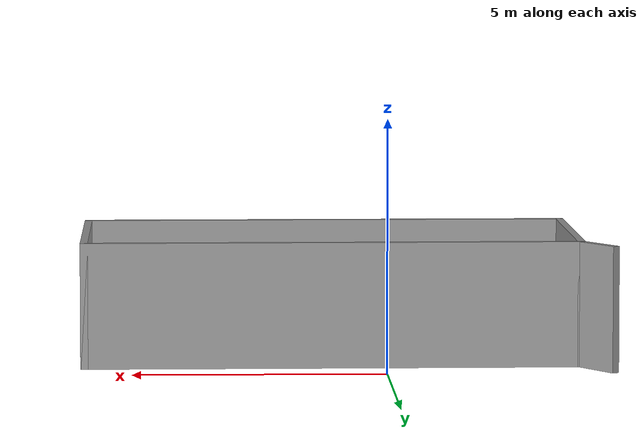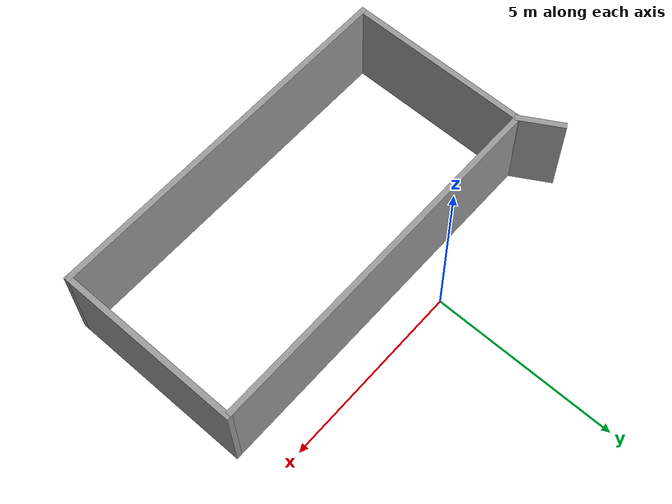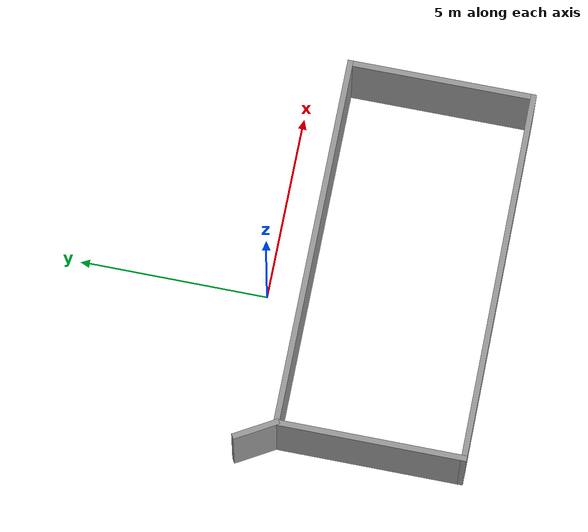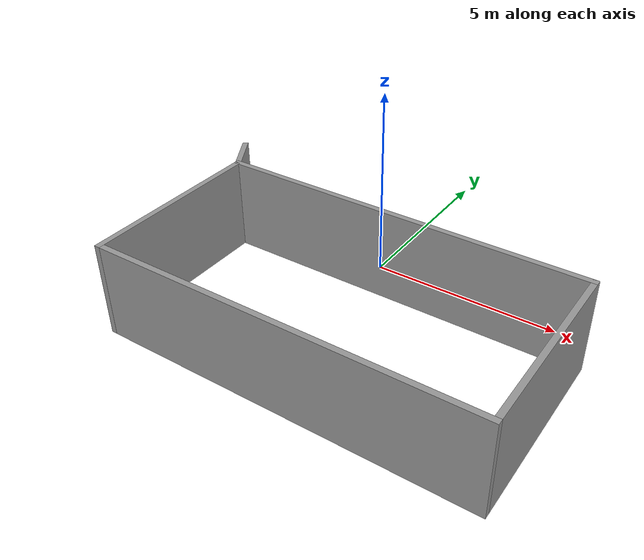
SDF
<?xml version='1.0'?>
<sdf version='1.7'>
  <model name='test'>
    <pose>0.736274 -2.95496 0 0 -0 0</pose>
    <link name='Wall_0'>
      <collision name='Wall_0_Collision'>
        <geometry>
          <box>
            <size>10 0.15 2.5</size>
          </box>
        </geometry>
        <pose>0 0 1.25 0 -0 0</pose>
      </collision>
      <visual name='Wall_0_Visual'>
        <pose>0 0 1.25 0 -0 0</pose>
        <geometry>
          <box>
            <size>10 0.15 2.5</size>
          </box>
        </geometry>
        <material>
          <script>
            <uri>file://media/materials/scripts/gazebo.material</uri>
            <name>Gazebo/Grey</name>
          </script>
          <ambient>1 1 1 1</ambient>
        </material>
        <meta>
          <layer>0</layer>
        </meta>
      </visual>
      <pose>0.288726 1.93496 0 0 -0 0</pose>
    </link>
    <link name='Wall_1'>
      <collision name='Wall_1_Collision'>
        <geometry>
          <box>
            <size>5 0.15 2.5</size>
          </box>
        </geometry>
        <pose>0 0 1.25 0 -0 0</pose>
      </collision>
      <visual name='Wall_1_Visual'>
        <pose>0 0 1.25 0 -0 0</pose>
        <geometry>
          <box>
            <size>5 0.15 2.5</size>
          </box>
        </geometry>
        <material>
          <script>
            <uri>file://media/materials/scripts/gazebo.material</uri>
            <name>Gazebo/Grey</name>
          </script>
          <ambient>1 1 1 1</ambient>
        </material>
        <meta>
          <layer>0</layer>
        </meta>
      </visual>
      <pose>5.21373 -0.49004 0 0 -0 -1.5708</pose>
    </link>
    <link name='Wall_2'>
      <collision name='Wall_2_Collision'>
        <geometry>
          <box>
            <size>10 0.15 2.5</size>
          </box>
        </geometry>
        <pose>0 0 1.25 0 -0 0</pose>
      </collision>
      <visual name='Wall_2_Visual'>
        <pose>0 0 1.25 0 -0 0</pose>
        <geometry>
          <box>
            <size>10 0.15 2.5</size>
          </box>
        </geometry>
        <material>
          <script>
            <uri>file://media/materials/scripts/gazebo.material</uri>
            <name>Gazebo/Grey</name>
          </script>
          <ambient>1 1 1 1</ambient>
        </material>
        <meta>
          <layer>0</layer>
        </meta>
      </visual>
      <pose>0.288726 -2.91504 0 0 -0 3.14159</pose>
    </link>
    <link name='Wall_3'>
      <collision name='Wall_3_Collision'>
        <geometry>
          <box>
            <size>5 0.15 2.5</size>
          </box>
        </geometry>
        <pose>0 0 1.25 0 -0 0</pose>
      </collision>
      <visual name='Wall_3_Visual'>
        <pose>0 0 1.25 0 -0 0</pose>
        <geometry>
          <box>
            <size>5 0.15 2.5</size>
          </box>
        </geometry>
        <material>
          <script>
            <uri>file://media/materials/scripts/gazebo.material</uri>
            <name>Gazebo/Grey</name>
          </script>
          <ambient>1 1 1 1</ambient>
        </material>
        <meta>
          <layer>0</layer>
        </meta>
      </visual>
      <pose>-4.63627 -0.49004 0 0 -0 1.5708</pose>
    </link>
    <link name='Wall_4'>
      <collision name='Wall_4_Collision'>
        <geometry>
          <box>
            <size>1.25 0.15 2.5</size>
          </box>
        </geometry>
        <pose>0 0 1.25 0 -0 0</pose>
      </collision>
      <visual name='Wall_4_Visual'>
        <pose>0 0 1.25 0 -0 0</pose>
        <geometry>
          <box>
            <size>1.25 0.15 2.5</size>
          </box>
        </geometry>
        <material>
          <script>
            <uri>file://media/materials/scripts/gazebo.material</uri>
            <name>Gazebo/Grey</name>
          </script>
          <ambient>0 0 0 1</ambient>
        </material>
        <meta>
          <layer>0</layer>
        </meta>
      </visual>
      <pose>-4.91127 2.41127 0 0 -0 2.0944</pose>
    </link>
    <static>1</static>
  </model>
</sdf>
